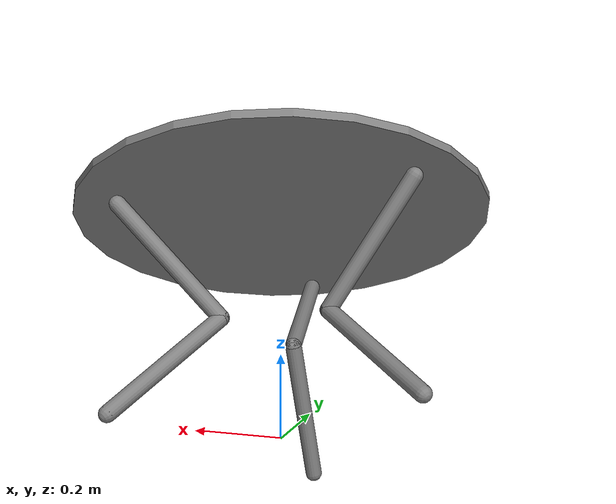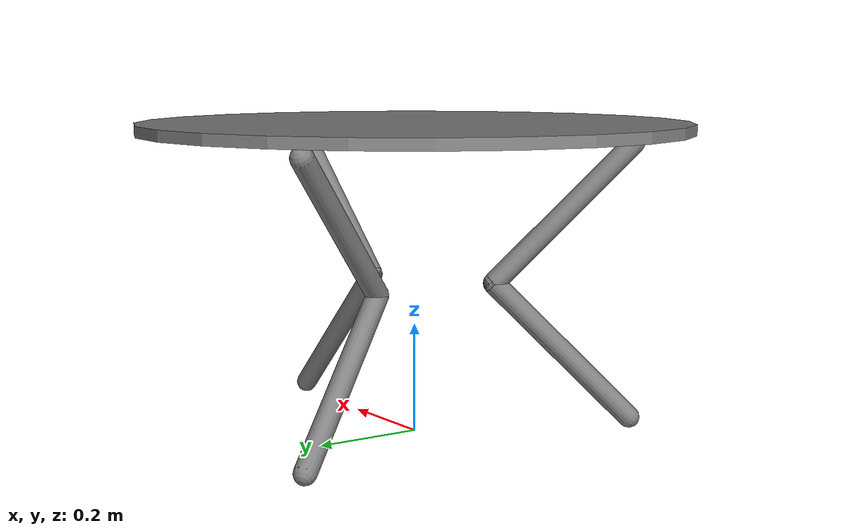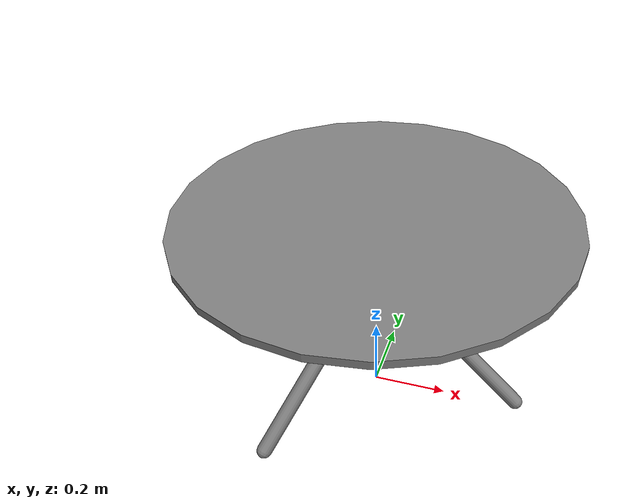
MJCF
<mujoco model="BalanceBot">
  <compiler angle="degree" coordinate="local" inertiafromgeom="true" />
  <worldbody>
    <body name="tray" pos="0 0 0.559117">
      <joint name="root_joint" type="free" />
      <geom density="100" pos="0 0 0" size="0.5 0.01" type="cylinder" />

      <body name="upper_leg0" pos="0.272721 0 -0.157279" quat="0.382683 0 -0.92388 0">
        <geom density="1000" size="0.02 0.18" type="capsule" />
        <joint axis="0 1 0" limited="true" name="upper_leg_joint0" pos="0 0 -0.18" range="-45 45" type="hinge" />
        <body name="lower_leg0" pos="-0.18 0 0.18" quat="0.707107 0 -0.707107 0">
          <geom density="1000" size="0.02 0.18" type="capsule" />
          <joint axis="0 1 0" limited="true" name="lower_leg_joint0" pos="0 0 -0.18" range="-70 90" type="hinge" />
        </body>
      </body>

      <body name="upper_leg1" pos="-0.13636 0.236183 -0.157279" quat="0.191342 0.800103 -0.46194 0.331414">
        <geom density="1000" size="0.02 0.18" type="capsule" />
        <joint axis="0 1 0" limited="true" name="upper_leg_joint1" pos="0 0 -0.18" range="-45 45" type="hinge" />
        <body name="lower_leg1" pos="-0.18 0 0.18" quat="0.707107 0 -0.707107 0">
          <geom density="1000" size="0.02 0.18" type="capsule" />
          <joint axis="0 1 0" limited="true" name="lower_leg_joint1" pos="0 0 -0.18" range="-70 90" type="hinge" />
        </body>
      </body>

      <body name="upper_leg2" pos="-0.13636 -0.236183 -0.157279" quat="-0.191342 0.800103 0.46194 0.331414">
        <geom density="1000" size="0.02 0.18" type="capsule" />
        <joint axis="0 1 0" limited="true" name="upper_leg_joint2" pos="0 0 -0.18" range="-45 45" type="hinge" />
        <body name="lower_leg2" pos="-0.18 0 0.18" quat="0.707107 0 -0.707107 0">
          <geom density="1000" size="0.02 0.18" type="capsule" />
          <joint axis="0 1 0" limited="true" name="lower_leg_joint2" pos="0 0 -0.18" range="-70 90" type="hinge" />
        </body>
      </body>
    </body>
  </worldbody>
</mujoco>
